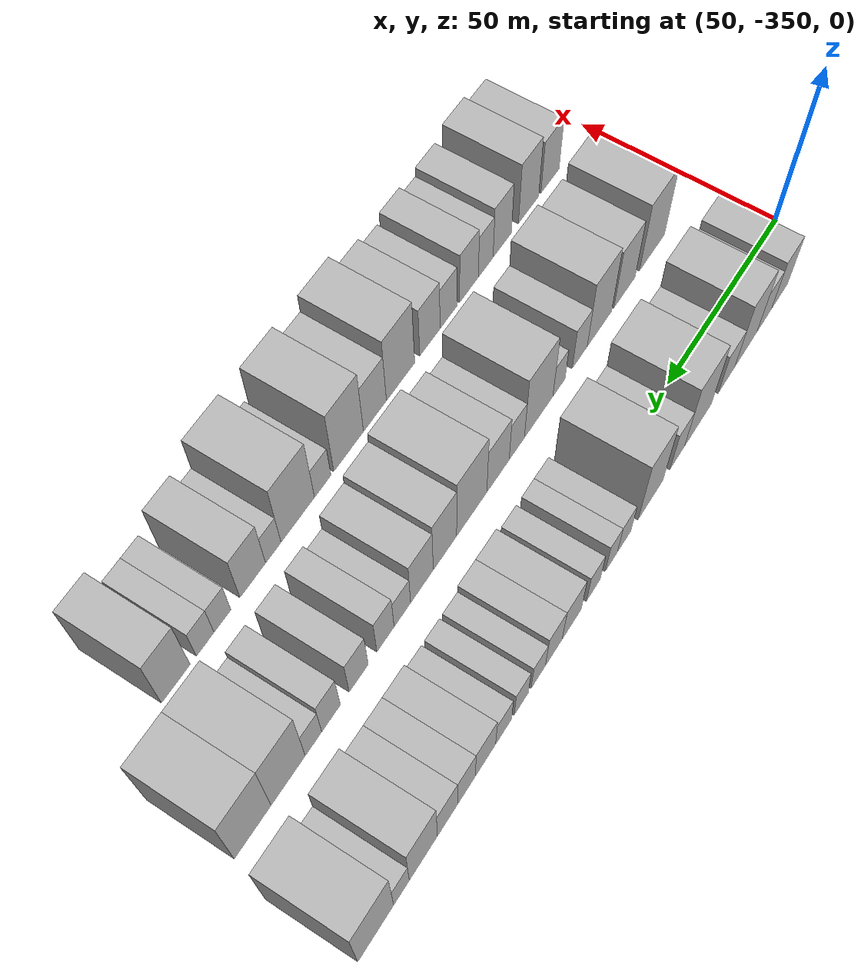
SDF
<sdf version="1.6">
 <world name="default">
  <model name="building_1">
   <static>1</static>
   <pose>50.0000 -332.0885 0 0.000000 0.000000 0.000000</pose>
   <link name="link">
    <pose>0 0 9.00 0 0 0</pose>
    <collision name="collision"><geometry><box><size>20.0000 7.8230 18.0000</size></box></geometry></collision>
    <visual name="visual">
     <cast_shadows>0</cast_shadows>
     <geometry><box><size>20.0000 7.8230 18.0000</size></box></geometry>
     <material>
      <script>
       <uri>model://HANNAS_wall/materials/scripts</uri>
       <uri>model://HANNAS_wall/materials/textures</uri>
       <name>vrc/HANNAS_wall</name>
      </script>
     </material>
    </visual>
   </link>
  </model>
  <model name="building_2">
   <static>1</static>
   <pose>50.0000 -324.7958 0 0.000000 0.000000 0.000000</pose>
   <link name="link">
    <pose>0 0 7.50 0 0 0</pose>
    <collision name="collision"><geometry><box><size>20.0000 6.7623 15.0000</size></box></geometry></collision>
    <visual name="visual">
     <cast_shadows>0</cast_shadows>
     <geometry><box><size>20.0000 6.7623 15.0000</size></box></geometry>
     <material>
      <script>
       <uri>model://HANNAS_wall/materials/scripts</uri>
       <uri>model://HANNAS_wall/materials/textures</uri>
       <name>vrc/HANNAS_wall</name>
      </script>
     </material>
    </visual>
   </link>
  </model>
  <model name="building_3">
   <static>1</static>
   <pose>50.0000 -316.2842 0 0.000000 0.000000 0.000000</pose>
   <link name="link">
    <pose>0 0 12.00 0 0 0</pose>
    <collision name="collision"><geometry><box><size>20.0000 10.2610 24.0000</size></box></geometry></collision>
    <visual name="visual">
     <cast_shadows>0</cast_shadows>
     <geometry><box><size>20.0000 10.2610 24.0000</size></box></geometry>
     <material>
      <script>
       <uri>model://HANNAS_wall/materials/scripts</uri>
       <uri>model://HANNAS_wall/materials/textures</uri>
       <name>vrc/HANNAS_wall</name>
      </script>
     </material>
    </visual>
   </link>
  </model>
  <model name="building_4">
   <static>1</static>
   <pose>50.0000 -307.4432 0 0.000000 0.000000 0.000000</pose>
   <link name="link">
    <pose>0 0 7.50 0 0 0</pose>
    <collision name="collision"><geometry><box><size>20.0000 7.4209 15.0000</size></box></geometry></collision>
    <visual name="visual">
     <cast_shadows>0</cast_shadows>
     <geometry><box><size>20.0000 7.4209 15.0000</size></box></geometry>
     <material>
      <script>
       <uri>model://HANNAS_wall/materials/scripts</uri>
       <uri>model://HANNAS_wall/materials/textures</uri>
       <name>vrc/HANNAS_wall</name>
      </script>
     </material>
    </visual>
   </link>
  </model>
  <model name="building_5">
   <static>1</static>
   <pose>50.0000 -294.8028 0 0.000000 0.000000 0.000000</pose>
   <link name="link">
    <pose>0 0 12.00 0 0 0</pose>
    <collision name="collision"><geometry><box><size>20.0000 11.8599 24.0000</size></box></geometry></collision>
    <visual name="visual">
     <cast_shadows>0</cast_shadows>
     <geometry><box><size>20.0000 11.8599 24.0000</size></box></geometry>
     <material>
      <script>
       <uri>model://HANNAS_wall/materials/scripts</uri>
       <uri>model://HANNAS_wall/materials/textures</uri>
       <name>vrc/HANNAS_wall</name>
      </script>
     </material>
    </visual>
   </link>
  </model>
  <model name="building_6">
   <static>1</static>
   <pose>50.0000 -285.7504 0 0.000000 0.000000 0.000000</pose>
   <link name="link">
    <pose>0 0 7.50 0 0 0</pose>
    <collision name="collision"><geometry><box><size>20.0000 6.2450 15.0000</size></box></geometry></collision>
    <visual name="visual">
     <cast_shadows>0</cast_shadows>
     <geometry><box><size>20.0000 6.2450 15.0000</size></box></geometry>
     <material>
      <script>
       <uri>model://HANNAS_wall/materials/scripts</uri>
       <uri>model://HANNAS_wall/materials/textures</uri>
       <name>vrc/HANNAS_wall</name>
      </script>
     </material>
    </visual>
   </link>
  </model>
  <model name="building_7">
   <static>1</static>
   <pose>50.0000 -274.4512 0 0.000000 0.000000 0.000000</pose>
   <link name="link">
    <pose>0 0 12.00 0 0 0</pose>
    <collision name="collision"><geometry><box><size>20.0000 10.3534 24.0000</size></box></geometry></collision>
    <visual name="visual">
     <cast_shadows>0</cast_shadows>
     <geometry><box><size>20.0000 10.3534 24.0000</size></box></geometry>
     <material>
      <script>
       <uri>model://HANNAS_wall/materials/scripts</uri>
       <uri>model://HANNAS_wall/materials/textures</uri>
       <name>vrc/HANNAS_wall</name>
      </script>
     </material>
    </visual>
   </link>
  </model>
  <model name="building_8">
   <static>1</static>
   <pose>50.0000 -263.5391 0 0.000000 0.000000 0.000000</pose>
   <link name="link">
    <pose>0 0 6.00 0 0 0</pose>
    <collision name="collision"><geometry><box><size>20.0000 5.4707 12.0000</size></box></geometry></collision>
    <visual name="visual">
     <cast_shadows>0</cast_shadows>
     <geometry><box><size>20.0000 5.4707 12.0000</size></box></geometry>
     <material>
      <script>
       <uri>model://HANNAS_wall/materials/scripts</uri>
       <uri>model://HANNAS_wall/materials/textures</uri>
       <name>vrc/HANNAS_wall</name>
      </script>
     </material>
    </visual>
   </link>
  </model>
  <model name="building_9">
   <static>1</static>
   <pose>50.0000 -258.3980 0 0.000000 0.000000 0.000000</pose>
   <link name="link">
    <pose>0 0 6.00 0 0 0</pose>
    <collision name="collision"><geometry><box><size>20.0000 4.8115 12.0000</size></box></geometry></collision>
    <visual name="visual">
     <cast_shadows>0</cast_shadows>
     <geometry><box><size>20.0000 4.8115 12.0000</size></box></geometry>
     <material>
      <script>
       <uri>model://HANNAS_wall/materials/scripts</uri>
       <uri>model://HANNAS_wall/materials/textures</uri>
       <name>vrc/HANNAS_wall</name>
      </script>
     </material>
    </visual>
   </link>
  </model>
  <model name="building_10">
   <static>1</static>
   <pose>50.0000 -251.2447 0 0.000000 0.000000 0.000000</pose>
   <link name="link">
    <pose>0 0 6.00 0 0 0</pose>
    <collision name="collision"><geometry><box><size>20.0000 5.4951 12.0000</size></box></geometry></collision>
    <visual name="visual">
     <cast_shadows>0</cast_shadows>
     <geometry><box><size>20.0000 5.4951 12.0000</size></box></geometry>
     <material>
      <script>
       <uri>model://HANNAS_wall/materials/scripts</uri>
       <uri>model://HANNAS_wall/materials/textures</uri>
       <name>vrc/HANNAS_wall</name>
      </script>
     </material>
    </visual>
   </link>
  </model>
  <model name="building_11">
   <static>1</static>
   <pose>50.0000 -242.8179 0 0.000000 0.000000 0.000000</pose>
   <link name="link">
    <pose>0 0 7.50 0 0 0</pose>
    <collision name="collision"><geometry><box><size>20.0000 7.3586 15.0000</size></box></geometry></collision>
    <visual name="visual">
     <cast_shadows>0</cast_shadows>
     <geometry><box><size>20.0000 7.3586 15.0000</size></box></geometry>
     <material>
      <script>
       <uri>model://HANNAS_wall/materials/scripts</uri>
       <uri>model://HANNAS_wall/materials/textures</uri>
       <name>vrc/HANNAS_wall</name>
      </script>
     </material>
    </visual>
   </link>
  </model>
  <model name="building_12">
   <static>1</static>
   <pose>50.0000 -235.9339 0 0.000000 0.000000 0.000000</pose>
   <link name="link">
    <pose>0 0 7.50 0 0 0</pose>
    <collision name="collision"><geometry><box><size>20.0000 6.4093 15.0000</size></box></geometry></collision>
    <visual name="visual">
     <cast_shadows>0</cast_shadows>
     <geometry><box><size>20.0000 6.4093 15.0000</size></box></geometry>
     <material>
      <script>
       <uri>model://HANNAS_wall/materials/scripts</uri>
       <uri>model://HANNAS_wall/materials/textures</uri>
       <name>vrc/HANNAS_wall</name>
      </script>
     </material>
    </visual>
   </link>
  </model>
  <model name="building_13">
   <static>1</static>
   <pose>50.0000 -230.0838 0 0.000000 0.000000 0.000000</pose>
   <link name="link">
    <pose>0 0 6.00 0 0 0</pose>
    <collision name="collision"><geometry><box><size>20.0000 5.2909 12.0000</size></box></geometry></collision>
    <visual name="visual">
     <cast_shadows>0</cast_shadows>
     <geometry><box><size>20.0000 5.2909 12.0000</size></box></geometry>
     <material>
      <script>
       <uri>model://HANNAS_wall/materials/scripts</uri>
       <uri>model://HANNAS_wall/materials/textures</uri>
       <name>vrc/HANNAS_wall</name>
      </script>
     </material>
    </visual>
   </link>
  </model>
  <model name="building_14">
   <static>1</static>
   <pose>50.0000 -223.8202 0 0.000000 0.000000 0.000000</pose>
   <link name="link">
    <pose>0 0 6.00 0 0 0</pose>
    <collision name="collision"><geometry><box><size>20.0000 5.2363 12.0000</size></box></geometry></collision>
    <visual name="visual">
     <cast_shadows>0</cast_shadows>
     <geometry><box><size>20.0000 5.2363 12.0000</size></box></geometry>
     <material>
      <script>
       <uri>model://HANNAS_wall/materials/scripts</uri>
       <uri>model://HANNAS_wall/materials/textures</uri>
       <name>vrc/HANNAS_wall</name>
      </script>
     </material>
    </visual>
   </link>
  </model>
  <model name="building_15">
   <static>1</static>
   <pose>50.0000 -217.3628 0 0.000000 0.000000 0.000000</pose>
   <link name="link">
    <pose>0 0 6.00 0 0 0</pose>
    <collision name="collision"><geometry><box><size>20.0000 5.6786 12.0000</size></box></geometry></collision>
    <visual name="visual">
     <cast_shadows>0</cast_shadows>
     <geometry><box><size>20.0000 5.6786 12.0000</size></box></geometry>
     <material>
      <script>
       <uri>model://HANNAS_wall/materials/scripts</uri>
       <uri>model://HANNAS_wall/materials/textures</uri>
       <name>vrc/HANNAS_wall</name>
      </script>
     </material>
    </visual>
   </link>
  </model>
  <model name="building_16">
   <static>1</static>
   <pose>50.0000 -210.9133 0 0.000000 0.000000 0.000000</pose>
   <link name="link">
    <pose>0 0 7.50 0 0 0</pose>
    <collision name="collision"><geometry><box><size>20.0000 7.2203 15.0000</size></box></geometry></collision>
    <visual name="visual">
     <cast_shadows>0</cast_shadows>
     <geometry><box><size>20.0000 7.2203 15.0000</size></box></geometry>
     <material>
      <script>
       <uri>model://HANNAS_wall/materials/scripts</uri>
       <uri>model://HANNAS_wall/materials/textures</uri>
       <name>vrc/HANNAS_wall</name>
      </script>
     </material>
    </visual>
   </link>
  </model>
  <model name="building_17">
   <static>1</static>
   <pose>50.0000 -204.2345 0 0.000000 0.000000 0.000000</pose>
   <link name="link">
    <pose>0 0 7.50 0 0 0</pose>
    <collision name="collision"><geometry><box><size>20.0000 6.1373 15.0000</size></box></geometry></collision>
    <visual name="visual">
     <cast_shadows>0</cast_shadows>
     <geometry><box><size>20.0000 6.1373 15.0000</size></box></geometry>
     <material>
      <script>
       <uri>model://HANNAS_wall/materials/scripts</uri>
       <uri>model://HANNAS_wall/materials/textures</uri>
       <name>vrc/HANNAS_wall</name>
      </script>
     </material>
    </visual>
   </link>
  </model>
  <model name="building_18">
   <static>1</static>
   <pose>50.0000 -197.7044 0 0.000000 0.000000 0.000000</pose>
   <link name="link">
    <pose>0 0 7.50 0 0 0</pose>
    <collision name="collision"><geometry><box><size>20.0000 6.9229 15.0000</size></box></geometry></collision>
    <visual name="visual">
     <cast_shadows>0</cast_shadows>
     <geometry><box><size>20.0000 6.9229 15.0000</size></box></geometry>
     <material>
      <script>
       <uri>model://HANNAS_wall/materials/scripts</uri>
       <uri>model://HANNAS_wall/materials/textures</uri>
       <name>vrc/HANNAS_wall</name>
      </script>
     </material>
    </visual>
   </link>
  </model>
  <model name="building_19">
   <static>1</static>
   <pose>50.0000 -189.5532 0 0.000000 0.000000 0.000000</pose>
   <link name="link">
    <pose>0 0 10.50 0 0 0</pose>
    <collision name="collision"><geometry><box><size>20.0000 9.3796 21.0000</size></box></geometry></collision>
    <visual name="visual">
     <cast_shadows>0</cast_shadows>
     <geometry><box><size>20.0000 9.3796 21.0000</size></box></geometry>
     <material>
      <script>
       <uri>model://HANNAS_wall/materials/scripts</uri>
       <uri>model://HANNAS_wall/materials/textures</uri>
       <name>vrc/HANNAS_wall</name>
      </script>
     </material>
    </visual>
   </link>
  </model>
  <model name="building_20">
   <static>1</static>
   <pose>50.0000 -182.3100 0 0.000000 0.000000 0.000000</pose>
   <link name="link">
    <pose>0 0 6.00 0 0 0</pose>
    <collision name="collision"><geometry><box><size>20.0000 5.1069 12.0000</size></box></geometry></collision>
    <visual name="visual">
     <cast_shadows>0</cast_shadows>
     <geometry><box><size>20.0000 5.1069 12.0000</size></box></geometry>
     <material>
      <script>
       <uri>model://HANNAS_wall/materials/scripts</uri>
       <uri>model://HANNAS_wall/materials/textures</uri>
       <name>vrc/HANNAS_wall</name>
      </script>
     </material>
    </visual>
   </link>
  </model>
  <model name="building_21">
   <static>1</static>
   <pose>50.0000 -173.9936 0 0.000000 0.000000 0.000000</pose>
   <link name="link">
    <pose>0 0 12.00 0 0 0</pose>
    <collision name="collision"><geometry><box><size>20.0000 11.5259 24.0000</size></box></geometry></collision>
    <visual name="visual">
     <cast_shadows>0</cast_shadows>
     <geometry><box><size>20.0000 11.5259 24.0000</size></box></geometry>
     <material>
      <script>
       <uri>model://HANNAS_wall/materials/scripts</uri>
       <uri>model://HANNAS_wall/materials/textures</uri>
       <name>vrc/HANNAS_wall</name>
      </script>
     </material>
    </visual>
   </link>
  </model>
  <model name="building_77">
   <static>1</static>
   <pose>79.0000 -327.3307 0 0.000000 0.000000 0.000000</pose>
   <link name="link">
    <pose>0 0 12.00 0 0 0</pose>
    <collision name="collision"><geometry><box><size>20.0000 11.3386 24.0000</size></box></geometry></collision>
    <visual name="visual">
     <cast_shadows>0</cast_shadows>
     <geometry><box><size>20.0000 11.3386 24.0000</size></box></geometry>
     <material>
      <script>
       <uri>model://HANNAS_wall/materials/scripts</uri>
       <uri>model://HANNAS_wall/materials/textures</uri>
       <name>vrc/HANNAS_wall</name>
      </script>
     </material>
    </visual>
   </link>
  </model>
  <model name="building_78">
   <static>1</static>
   <pose>79.0000 -314.9878 0 0.000000 0.000000 0.000000</pose>
   <link name="link">
    <pose>0 0 10.50 0 0 0</pose>
    <collision name="collision"><geometry><box><size>20.0000 9.3470 21.0000</size></box></geometry></collision>
    <visual name="visual">
     <cast_shadows>0</cast_shadows>
     <geometry><box><size>20.0000 9.3470 21.0000</size></box></geometry>
     <material>
      <script>
       <uri>model://HANNAS_wall/materials/scripts</uri>
       <uri>model://HANNAS_wall/materials/textures</uri>
       <name>vrc/HANNAS_wall</name>
      </script>
     </material>
    </visual>
   </link>
  </model>
  <model name="building_79">
   <static>1</static>
   <pose>79.0000 -304.0683 0 0.000000 0.000000 0.000000</pose>
   <link name="link">
    <pose>0 0 12.00 0 0 0</pose>
    <collision name="collision"><geometry><box><size>20.0000 10.4921 24.0000</size></box></geometry></collision>
    <visual name="visual">
     <cast_shadows>0</cast_shadows>
     <geometry><box><size>20.0000 10.4921 24.0000</size></box></geometry>
     <material>
      <script>
       <uri>model://HANNAS_wall/materials/scripts</uri>
       <uri>model://HANNAS_wall/materials/textures</uri>
       <name>vrc/HANNAS_wall</name>
      </script>
     </material>
    </visual>
   </link>
  </model>
  <model name="building_80">
   <static>1</static>
   <pose>79.0000 -295.6489 0 0.000000 0.000000 0.000000</pose>
   <link name="link">
    <pose>0 0 7.50 0 0 0</pose>
    <collision name="collision"><geometry><box><size>20.0000 6.3468 15.0000</size></box></geometry></collision>
    <visual name="visual">
     <cast_shadows>0</cast_shadows>
     <geometry><box><size>20.0000 6.3468 15.0000</size></box></geometry>
     <material>
      <script>
       <uri>model://HANNAS_wall/materials/scripts</uri>
       <uri>model://HANNAS_wall/materials/textures</uri>
       <name>vrc/HANNAS_wall</name>
      </script>
     </material>
    </visual>
   </link>
  </model>
  <model name="building_81">
   <static>1</static>
   <pose>79.0000 -286.9545 0 0.000000 0.000000 0.000000</pose>
   <link name="link">
    <pose>0 0 6.00 0 0 0</pose>
    <collision name="collision"><geometry><box><size>20.0000 5.0419 12.0000</size></box></geometry></collision>
    <visual name="visual">
     <cast_shadows>0</cast_shadows>
     <geometry><box><size>20.0000 5.0419 12.0000</size></box></geometry>
     <material>
      <script>
       <uri>model://HANNAS_wall/materials/scripts</uri>
       <uri>model://HANNAS_wall/materials/textures</uri>
       <name>vrc/HANNAS_wall</name>
      </script>
     </material>
    </visual>
   </link>
  </model>
  <model name="building_82">
   <static>1</static>
   <pose>79.0000 -278.6475 0 0.000000 0.000000 0.000000</pose>
   <link name="link">
    <pose>0 0 12.00 0 0 0</pose>
    <collision name="collision"><geometry><box><size>20.0000 11.5722 24.0000</size></box></geometry></collision>
    <visual name="visual">
     <cast_shadows>0</cast_shadows>
     <geometry><box><size>20.0000 11.5722 24.0000</size></box></geometry>
     <material>
      <script>
       <uri>model://HANNAS_wall/materials/scripts</uri>
       <uri>model://HANNAS_wall/materials/textures</uri>
       <name>vrc/HANNAS_wall</name>
      </script>
     </material>
    </visual>
   </link>
  </model>
  <model name="building_83">
   <static>1</static>
   <pose>79.0000 -269.8432 0 0.000000 0.000000 0.000000</pose>
   <link name="link">
    <pose>0 0 7.50 0 0 0</pose>
    <collision name="collision"><geometry><box><size>20.0000 6.0364 15.0000</size></box></geometry></collision>
    <visual name="visual">
     <cast_shadows>0</cast_shadows>
     <geometry><box><size>20.0000 6.0364 15.0000</size></box></geometry>
     <material>
      <script>
       <uri>model://HANNAS_wall/materials/scripts</uri>
       <uri>model://HANNAS_wall/materials/textures</uri>
       <name>vrc/HANNAS_wall</name>
      </script>
     </material>
    </visual>
   </link>
  </model>
  <model name="building_84">
   <static>1</static>
   <pose>79.0000 -262.4587 0 0.000000 0.000000 0.000000</pose>
   <link name="link">
    <pose>0 0 9.00 0 0 0</pose>
    <collision name="collision"><geometry><box><size>20.0000 8.7327 18.0000</size></box></geometry></collision>
    <visual name="visual">
     <cast_shadows>0</cast_shadows>
     <geometry><box><size>20.0000 8.7327 18.0000</size></box></geometry>
     <material>
      <script>
       <uri>model://HANNAS_wall/materials/scripts</uri>
       <uri>model://HANNAS_wall/materials/textures</uri>
       <name>vrc/HANNAS_wall</name>
      </script>
     </material>
    </visual>
   </link>
  </model>
  <model name="building_85">
   <static>1</static>
   <pose>79.0000 -252.3534 0 0.000000 0.000000 0.000000</pose>
   <link name="link">
    <pose>0 0 12.00 0 0 0</pose>
    <collision name="collision"><geometry><box><size>20.0000 11.4779 24.0000</size></box></geometry></collision>
    <visual name="visual">
     <cast_shadows>0</cast_shadows>
     <geometry><box><size>20.0000 11.4779 24.0000</size></box></geometry>
     <material>
      <script>
       <uri>model://HANNAS_wall/materials/scripts</uri>
       <uri>model://HANNAS_wall/materials/textures</uri>
       <name>vrc/HANNAS_wall</name>
      </script>
     </material>
    </visual>
   </link>
  </model>
  <model name="building_86">
   <static>1</static>
   <pose>79.0000 -242.2861 0 0.000000 0.000000 0.000000</pose>
   <link name="link">
    <pose>0 0 10.50 0 0 0</pose>
    <collision name="collision"><geometry><box><size>20.0000 8.6567 21.0000</size></box></geometry></collision>
    <visual name="visual">
     <cast_shadows>0</cast_shadows>
     <geometry><box><size>20.0000 8.6567 21.0000</size></box></geometry>
     <material>
      <script>
       <uri>model://HANNAS_wall/materials/scripts</uri>
       <uri>model://HANNAS_wall/materials/textures</uri>
       <name>vrc/HANNAS_wall</name>
      </script>
     </material>
    </visual>
   </link>
  </model>
  <model name="building_87">
   <static>1</static>
   <pose>79.0000 -233.8417 0 0.000000 0.000000 0.000000</pose>
   <link name="link">
    <pose>0 0 9.00 0 0 0</pose>
    <collision name="collision"><geometry><box><size>20.0000 8.2321 18.0000</size></box></geometry></collision>
    <visual name="visual">
     <cast_shadows>0</cast_shadows>
     <geometry><box><size>20.0000 8.2321 18.0000</size></box></geometry>
     <material>
      <script>
       <uri>model://HANNAS_wall/materials/scripts</uri>
       <uri>model://HANNAS_wall/materials/textures</uri>
       <name>vrc/HANNAS_wall</name>
      </script>
     </material>
    </visual>
   </link>
  </model>
  <model name="building_88">
   <static>1</static>
   <pose>79.0000 -226.7709 0 0.000000 0.000000 0.000000</pose>
   <link name="link">
    <pose>0 0 6.00 0 0 0</pose>
    <collision name="collision"><geometry><box><size>20.0000 5.9094 12.0000</size></box></geometry></collision>
    <visual name="visual">
     <cast_shadows>0</cast_shadows>
     <geometry><box><size>20.0000 5.9094 12.0000</size></box></geometry>
     <material>
      <script>
       <uri>model://HANNAS_wall/materials/scripts</uri>
       <uri>model://HANNAS_wall/materials/textures</uri>
       <name>vrc/HANNAS_wall</name>
      </script>
     </material>
    </visual>
   </link>
  </model>
  <model name="building_89">
   <static>1</static>
   <pose>79.0000 -220.7926 0 0.000000 0.000000 0.000000</pose>
   <link name="link">
    <pose>0 0 7.50 0 0 0</pose>
    <collision name="collision"><geometry><box><size>20.0000 6.0472 15.0000</size></box></geometry></collision>
    <visual name="visual">
     <cast_shadows>0</cast_shadows>
     <geometry><box><size>20.0000 6.0472 15.0000</size></box></geometry>
     <material>
      <script>
       <uri>model://HANNAS_wall/materials/scripts</uri>
       <uri>model://HANNAS_wall/materials/textures</uri>
       <name>vrc/HANNAS_wall</name>
      </script>
     </material>
    </visual>
   </link>
  </model>
  <model name="building_90">
   <static>1</static>
   <pose>79.0000 -211.5048 0 0.000000 0.000000 0.000000</pose>
   <link name="link">
    <pose>0 0 7.50 0 0 0</pose>
    <collision name="collision"><geometry><box><size>20.0000 6.5284 15.0000</size></box></geometry></collision>
    <visual name="visual">
     <cast_shadows>0</cast_shadows>
     <geometry><box><size>20.0000 6.5284 15.0000</size></box></geometry>
     <material>
      <script>
       <uri>model://HANNAS_wall/materials/scripts</uri>
       <uri>model://HANNAS_wall/materials/textures</uri>
       <name>vrc/HANNAS_wall</name>
      </script>
     </material>
    </visual>
   </link>
  </model>
  <model name="building_91">
   <static>1</static>
   <pose>79.0000 -202.1335 0 0.000000 0.000000 0.000000</pose>
   <link name="link">
    <pose>0 0 7.50 0 0 0</pose>
    <collision name="collision"><geometry><box><size>20.0000 6.2143 15.0000</size></box></geometry></collision>
    <visual name="visual">
     <cast_shadows>0</cast_shadows>
     <geometry><box><size>20.0000 6.2143 15.0000</size></box></geometry>
     <material>
      <script>
       <uri>model://HANNAS_wall/materials/scripts</uri>
       <uri>model://HANNAS_wall/materials/textures</uri>
       <name>vrc/HANNAS_wall</name>
      </script>
     </material>
    </visual>
   </link>
  </model>
  <model name="building_92">
   <static>1</static>
   <pose>79.0000 -196.3088 0 0.000000 0.000000 0.000000</pose>
   <link name="link">
    <pose>0 0 6.00 0 0 0</pose>
    <collision name="collision"><geometry><box><size>20.0000 5.4351 12.0000</size></box></geometry></collision>
    <visual name="visual">
     <cast_shadows>0</cast_shadows>
     <geometry><box><size>20.0000 5.4351 12.0000</size></box></geometry>
     <material>
      <script>
       <uri>model://HANNAS_wall/materials/scripts</uri>
       <uri>model://HANNAS_wall/materials/textures</uri>
       <name>vrc/HANNAS_wall</name>
      </script>
     </material>
    </visual>
   </link>
  </model>
  <model name="building_93">
   <static>1</static>
   <pose>79.0000 -188.0739 0 0.000000 0.000000 0.000000</pose>
   <link name="link">
    <pose>0 0 12.00 0 0 0</pose>
    <collision name="collision"><geometry><box><size>20.0000 11.0347 24.0000</size></box></geometry></collision>
    <visual name="visual">
     <cast_shadows>0</cast_shadows>
     <geometry><box><size>20.0000 11.0347 24.0000</size></box></geometry>
     <material>
      <script>
       <uri>model://HANNAS_wall/materials/scripts</uri>
       <uri>model://HANNAS_wall/materials/textures</uri>
       <name>vrc/HANNAS_wall</name>
      </script>
     </material>
    </visual>
   </link>
  </model>
  <model name="building_94">
   <static>1</static>
   <pose>79.0000 -176.7972 0 0.000000 0.000000 0.000000</pose>
   <link name="link">
    <pose>0 0 12.00 0 0 0</pose>
    <collision name="collision"><geometry><box><size>20.0000 11.5187 24.0000</size></box></geometry></collision>
    <visual name="visual">
     <cast_shadows>0</cast_shadows>
     <geometry><box><size>20.0000 11.5187 24.0000</size></box></geometry>
     <material>
      <script>
       <uri>model://HANNAS_wall/materials/scripts</uri>
       <uri>model://HANNAS_wall/materials/textures</uri>
       <name>vrc/HANNAS_wall</name>
      </script>
     </material>
    </visual>
   </link>
  </model>
  <model name="building_154">
   <static>1</static>
   <pose>108.0000 -331.9871 0 0.000000 0.000000 0.000000</pose>
   <link name="link">
    <pose>0 0 9.00 0 0 0</pose>
    <collision name="collision"><geometry><box><size>20.0000 8.0258 18.0000</size></box></geometry></collision>
    <visual name="visual">
     <cast_shadows>0</cast_shadows>
     <geometry><box><size>20.0000 8.0258 18.0000</size></box></geometry>
     <material>
      <script>
       <uri>model://HANNAS_wall/materials/scripts</uri>
       <uri>model://HANNAS_wall/materials/textures</uri>
       <name>vrc/HANNAS_wall</name>
      </script>
     </material>
    </visual>
   </link>
  </model>
  <model name="building_155">
   <static>1</static>
   <pose>108.0000 -322.5835 0 0.000000 0.000000 0.000000</pose>
   <link name="link">
    <pose>0 0 10.50 0 0 0</pose>
    <collision name="collision"><geometry><box><size>20.0000 8.7814 21.0000</size></box></geometry></collision>
    <visual name="visual">
     <cast_shadows>0</cast_shadows>
     <geometry><box><size>20.0000 8.7814 21.0000</size></box></geometry>
     <material>
      <script>
       <uri>model://HANNAS_wall/materials/scripts</uri>
       <uri>model://HANNAS_wall/materials/textures</uri>
       <name>vrc/HANNAS_wall</name>
      </script>
     </material>
    </visual>
   </link>
  </model>
  <model name="building_156">
   <static>1</static>
   <pose>108.0000 -311.3140 0 0.000000 0.000000 0.000000</pose>
   <link name="link">
    <pose>0 0 9.00 0 0 0</pose>
    <collision name="collision"><geometry><box><size>20.0000 7.7576 18.0000</size></box></geometry></collision>
    <visual name="visual">
     <cast_shadows>0</cast_shadows>
     <geometry><box><size>20.0000 7.7576 18.0000</size></box></geometry>
     <material>
      <script>
       <uri>model://HANNAS_wall/materials/scripts</uri>
       <uri>model://HANNAS_wall/materials/textures</uri>
       <name>vrc/HANNAS_wall</name>
      </script>
     </material>
    </visual>
   </link>
  </model>
  <model name="building_157">
   <static>1</static>
   <pose>108.0000 -304.3559 0 0.000000 0.000000 0.000000</pose>
   <link name="link">
    <pose>0 0 7.50 0 0 0</pose>
    <collision name="collision"><geometry><box><size>20.0000 6.1584 15.0000</size></box></geometry></collision>
    <visual name="visual">
     <cast_shadows>0</cast_shadows>
     <geometry><box><size>20.0000 6.1584 15.0000</size></box></geometry>
     <material>
      <script>
       <uri>model://HANNAS_wall/materials/scripts</uri>
       <uri>model://HANNAS_wall/materials/textures</uri>
       <name>vrc/HANNAS_wall</name>
      </script>
     </material>
    </visual>
   </link>
  </model>
  <model name="building_158">
   <static>1</static>
   <pose>108.0000 -297.4366 0 0.000000 0.000000 0.000000</pose>
   <link name="link">
    <pose>0 0 9.00 0 0 0</pose>
    <collision name="collision"><geometry><box><size>20.0000 7.6801 18.0000</size></box></geometry></collision>
    <visual name="visual">
     <cast_shadows>0</cast_shadows>
     <geometry><box><size>20.0000 7.6801 18.0000</size></box></geometry>
     <material>
      <script>
       <uri>model://HANNAS_wall/materials/scripts</uri>
       <uri>model://HANNAS_wall/materials/textures</uri>
       <name>vrc/HANNAS_wall</name>
      </script>
     </material>
    </visual>
   </link>
  </model>
  <model name="building_159">
   <static>1</static>
   <pose>108.0000 -289.1786 0 0.000000 0.000000 0.000000</pose>
   <link name="link">
    <pose>0 0 7.50 0 0 0</pose>
    <collision name="collision"><geometry><box><size>20.0000 6.8360 15.0000</size></box></geometry></collision>
    <visual name="visual">
     <cast_shadows>0</cast_shadows>
     <geometry><box><size>20.0000 6.8360 15.0000</size></box></geometry>
     <material>
      <script>
       <uri>model://HANNAS_wall/materials/scripts</uri>
       <uri>model://HANNAS_wall/materials/textures</uri>
       <name>vrc/HANNAS_wall</name>
      </script>
     </material>
    </visual>
   </link>
  </model>
  <model name="building_160">
   <static>1</static>
   <pose>108.0000 -281.7422 0 0.000000 0.000000 0.000000</pose>
   <link name="link">
    <pose>0 0 9.00 0 0 0</pose>
    <collision name="collision"><geometry><box><size>20.0000 8.0366 18.0000</size></box></geometry></collision>
    <visual name="visual">
     <cast_shadows>0</cast_shadows>
     <geometry><box><size>20.0000 8.0366 18.0000</size></box></geometry>
     <material>
      <script>
       <uri>model://HANNAS_wall/materials/scripts</uri>
       <uri>model://HANNAS_wall/materials/textures</uri>
       <name>vrc/HANNAS_wall</name>
      </script>
     </material>
    </visual>
   </link>
  </model>
  <model name="building_161">
   <static>1</static>
   <pose>108.0000 -270.2905 0 0.000000 0.000000 0.000000</pose>
   <link name="link">
    <pose>0 0 12.00 0 0 0</pose>
    <collision name="collision"><geometry><box><size>20.0000 10.8667 24.0000</size></box></geometry></collision>
    <visual name="visual">
     <cast_shadows>0</cast_shadows>
     <geometry><box><size>20.0000 10.8667 24.0000</size></box></geometry>
     <material>
      <script>
       <uri>model://HANNAS_wall/materials/scripts</uri>
       <uri>model://HANNAS_wall/materials/textures</uri>
       <name>vrc/HANNAS_wall</name>
      </script>
     </material>
    </visual>
   </link>
  </model>
  <model name="building_162">
   <static>1</static>
   <pose>108.0000 -260.5492 0 0.000000 0.000000 0.000000</pose>
   <link name="link">
    <pose>0 0 9.00 0 0 0</pose>
    <collision name="collision"><geometry><box><size>20.0000 8.6158 18.0000</size></box></geometry></collision>
    <visual name="visual">
     <cast_shadows>0</cast_shadows>
     <geometry><box><size>20.0000 8.6158 18.0000</size></box></geometry>
     <material>
      <script>
       <uri>model://HANNAS_wall/materials/scripts</uri>
       <uri>model://HANNAS_wall/materials/textures</uri>
       <name>vrc/HANNAS_wall</name>
      </script>
     </material>
    </visual>
   </link>
  </model>
  <model name="building_163">
   <static>1</static>
   <pose>108.0000 -250.7733 0 0.000000 0.000000 0.000000</pose>
   <link name="link">
    <pose>0 0 12.00 0 0 0</pose>
    <collision name="collision"><geometry><box><size>20.0000 10.9360 24.0000</size></box></geometry></collision>
    <visual name="visual">
     <cast_shadows>0</cast_shadows>
     <geometry><box><size>20.0000 10.9360 24.0000</size></box></geometry>
     <material>
      <script>
       <uri>model://HANNAS_wall/materials/scripts</uri>
       <uri>model://HANNAS_wall/materials/textures</uri>
       <name>vrc/HANNAS_wall</name>
      </script>
     </material>
    </visual>
   </link>
  </model>
  <model name="building_164">
   <static>1</static>
   <pose>108.0000 -241.3568 0 0.000000 0.000000 0.000000</pose>
   <link name="link">
    <pose>0 0 6.00 0 0 0</pose>
    <collision name="collision"><geometry><box><size>20.0000 5.8971 12.0000</size></box></geometry></collision>
    <visual name="visual">
     <cast_shadows>0</cast_shadows>
     <geometry><box><size>20.0000 5.8971 12.0000</size></box></geometry>
     <material>
      <script>
       <uri>model://HANNAS_wall/materials/scripts</uri>
       <uri>model://HANNAS_wall/materials/textures</uri>
       <name>vrc/HANNAS_wall</name>
      </script>
     </material>
    </visual>
   </link>
  </model>
  <model name="building_165">
   <static>1</static>
   <pose>108.0000 -232.5182 0 0.000000 0.000000 0.000000</pose>
   <link name="link">
    <pose>0 0 12.00 0 0 0</pose>
    <collision name="collision"><geometry><box><size>20.0000 11.7801 24.0000</size></box></geometry></collision>
    <visual name="visual">
     <cast_shadows>0</cast_shadows>
     <geometry><box><size>20.0000 11.7801 24.0000</size></box></geometry>
     <material>
      <script>
       <uri>model://HANNAS_wall/materials/scripts</uri>
       <uri>model://HANNAS_wall/materials/textures</uri>
       <name>vrc/HANNAS_wall</name>
      </script>
     </material>
    </visual>
   </link>
  </model>
  <model name="building_166">
   <static>1</static>
   <pose>108.0000 -223.9808 0 0.000000 0.000000 0.000000</pose>
   <link name="link">
    <pose>0 0 6.00 0 0 0</pose>
    <collision name="collision"><geometry><box><size>20.0000 5.2947 12.0000</size></box></geometry></collision>
    <visual name="visual">
     <cast_shadows>0</cast_shadows>
     <geometry><box><size>20.0000 5.2947 12.0000</size></box></geometry>
     <material>
      <script>
       <uri>model://HANNAS_wall/materials/scripts</uri>
       <uri>model://HANNAS_wall/materials/textures</uri>
       <name>vrc/HANNAS_wall</name>
      </script>
     </material>
    </visual>
   </link>
  </model>
  <model name="building_167">
   <static>1</static>
   <pose>108.0000 -216.9974 0 0.000000 0.000000 0.000000</pose>
   <link name="link">
    <pose>0 0 9.00 0 0 0</pose>
    <collision name="collision"><geometry><box><size>20.0000 8.6720 18.0000</size></box></geometry></collision>
    <visual name="visual">
     <cast_shadows>0</cast_shadows>
     <geometry><box><size>20.0000 8.6720 18.0000</size></box></geometry>
     <material>
      <script>
       <uri>model://HANNAS_wall/materials/scripts</uri>
       <uri>model://HANNAS_wall/materials/textures</uri>
       <name>vrc/HANNAS_wall</name>
      </script>
     </material>
    </visual>
   </link>
  </model>
  <model name="building_168">
   <static>1</static>
   <pose>108.0000 -206.8851 0 0.000000 0.000000 0.000000</pose>
   <link name="link">
    <pose>0 0 6.00 0 0 0</pose>
    <collision name="collision"><geometry><box><size>20.0000 5.5526 12.0000</size></box></geometry></collision>
    <visual name="visual">
     <cast_shadows>0</cast_shadows>
     <geometry><box><size>20.0000 5.5526 12.0000</size></box></geometry>
     <material>
      <script>
       <uri>model://HANNAS_wall/materials/scripts</uri>
       <uri>model://HANNAS_wall/materials/textures</uri>
       <name>vrc/HANNAS_wall</name>
      </script>
     </material>
    </visual>
   </link>
  </model>
  <model name="building_169">
   <static>1</static>
   <pose>108.0000 -201.2436 0 0.000000 0.000000 0.000000</pose>
   <link name="link">
    <pose>0 0 6.00 0 0 0</pose>
    <collision name="collision"><geometry><box><size>20.0000 5.7304 12.0000</size></box></geometry></collision>
    <visual name="visual">
     <cast_shadows>0</cast_shadows>
     <geometry><box><size>20.0000 5.7304 12.0000</size></box></geometry>
     <material>
      <script>
       <uri>model://HANNAS_wall/materials/scripts</uri>
       <uri>model://HANNAS_wall/materials/textures</uri>
       <name>vrc/HANNAS_wall</name>
      </script>
     </material>
    </visual>
   </link>
  </model>
  <model name="building_170">
   <static>1</static>
   <pose>108.0000 -191.8354 0 0.000000 0.000000 0.000000</pose>
   <link name="link">
    <pose>0 0 10.50 0 0 0</pose>
    <collision name="collision"><geometry><box><size>20.0000 9.0861 21.0000</size></box></geometry></collision>
    <visual name="visual">
     <cast_shadows>0</cast_shadows>
     <geometry><box><size>20.0000 9.0861 21.0000</size></box></geometry>
     <material>
      <script>
       <uri>model://HANNAS_wall/materials/scripts</uri>
       <uri>model://HANNAS_wall/materials/textures</uri>
       <name>vrc/HANNAS_wall</name>
      </script>
     </material>
    </visual>
   </link>
  </model>
 </world>
</sdf>
